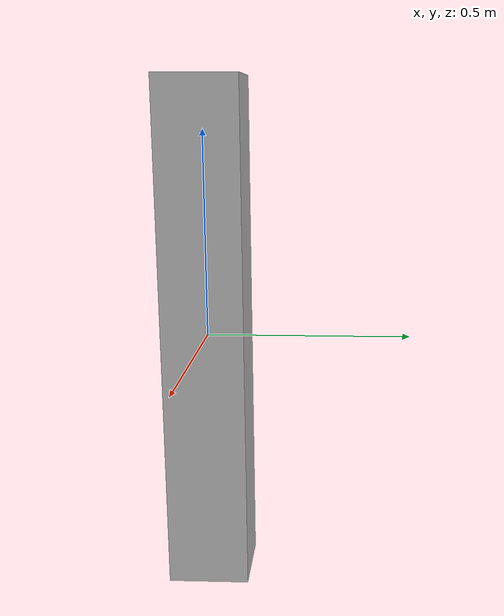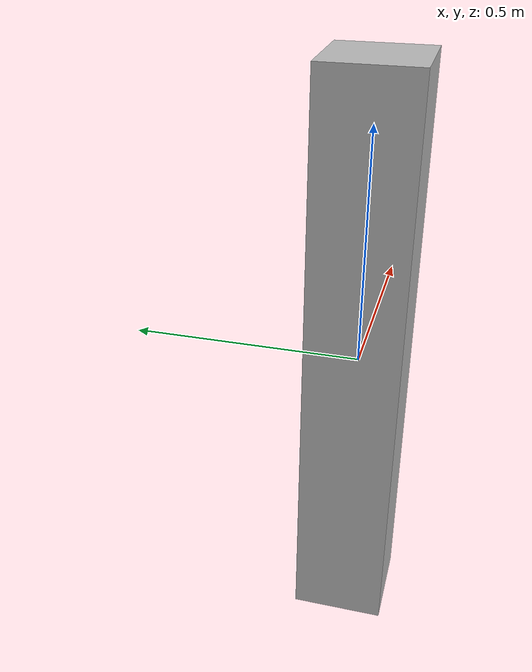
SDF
<?xml version="1.0" ?>
<sdf version="1.5">
  <model name="rigid_box">
	<pose>0 0 0  0 0 0</pose>
	<static>true</static>
	<link name="link">
	  <collision name="collision">
		<geometry>
		  <box>
			  <size>.2 0.2 1.25</size>
		  </box>
		</geometry>
	  </collision>
	  <visual name="visual">
		<geometry>
		  <box>
			  <size>.2 0.2 1.25</size>
		  </box>
		</geometry>
	  </visual>
	</link>
  </model>
</sdf>
